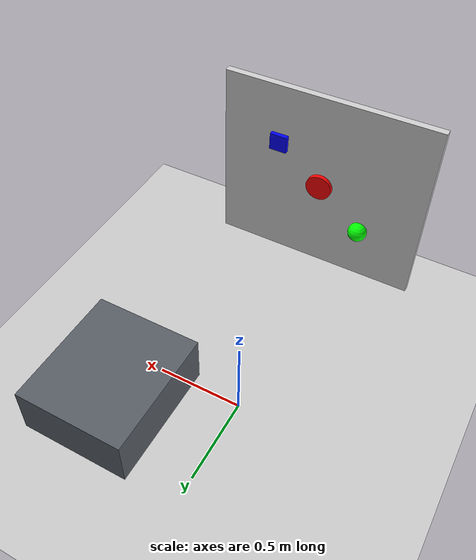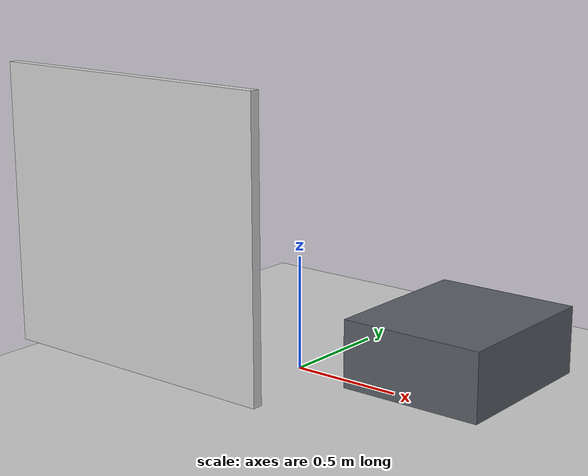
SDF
<?xml version="1.0"?>
<sdf version="1.6">
  <world name="eye_in_hand_visual_servo">
    <include><uri>model://ground_plane</uri></include>
    <include><uri>model://sun</uri></include>

    <!-- At zero pose the camera is approximately (0.04,-0.40,0.84) and
         looks along world -Y, so the primary target is visible at startup. -->
    <model name="target_wall">
      <static>true</static>
      <pose>0.04 -1.02 0.84 0 0 0</pose>
      <link name="wall_link">
        <collision name="collision"><geometry><box><size>1.20 0.04 1.10</size></box></geometry></collision>
        <visual name="visual"><geometry><box><size>1.20 0.04 1.10</size></box></geometry>
          <material><ambient>0.72 0.72 0.72 1</ambient><diffuse>0.82 0.82 0.82 1</diffuse></material>
        </visual>
      </link>
    </model>

    <model name="red_visual_target">
      <static>true</static><pose>0.04 -0.985 0.84 1.57079632679 0 0</pose>
      <link name="target_link">
        <collision name="collision"><geometry><cylinder><radius>0.075</radius><length>0.025</length></cylinder></geometry></collision>
        <visual name="visual"><geometry><cylinder><radius>0.075</radius><length>0.025</length></cylinder></geometry>
          <material><ambient>0.85 0.01 0.01 1</ambient><diffuse>1 0.01 0.01 1</diffuse></material>
        </visual>
      </link>
    </model>
    <model name="green_visual_target">
      <static>true</static><pose>-0.22 -0.985 0.62 0 0 0</pose>
      <link name="target_link"><visual name="visual">
        <geometry><sphere><radius>0.055</radius></sphere></geometry>
        <material><ambient>0.01 0.75 0.01 1</ambient><diffuse>0.01 1 0.01 1</diffuse></material>
      </visual></link>
    </model>
    <model name="blue_visual_target">
      <static>true</static><pose>0.30 -0.985 1.05 0 0 0</pose>
      <link name="target_link"><visual name="visual">
        <geometry><box><size>0.10 0.025 0.10</size></box></geometry>
        <material><ambient>0.01 0.01 0.75 1</ambient><diffuse>0.01 0.01 1 1</diffuse></material>
      </visual></link>
    </model>

    <!-- Kept away from the startup arm pose; useful as a depth background. -->
    <model name="workbench">
      <static>true</static><pose>0.62 0.30 0.15 0 0 0</pose>
      <link name="bench_link">
        <collision name="collision"><geometry><box><size>0.65 0.75 0.30</size></box></geometry></collision>
        <visual name="visual"><geometry><box><size>0.65 0.75 0.30</size></box></geometry>
          <material><ambient>0.25 0.27 0.30 1</ambient><diffuse>0.35 0.37 0.40 1</diffuse></material>
        </visual>
      </link>
    </model>

    <physics name="visual_servo_physics" type="ode">
      <max_step_size>0.001</max_step_size><real_time_update_rate>1000</real_time_update_rate>
      <ode><solver><type>quick</type><iters>100</iters><sor>1.2</sor></solver></ode>
    </physics>
  </world>
</sdf>
